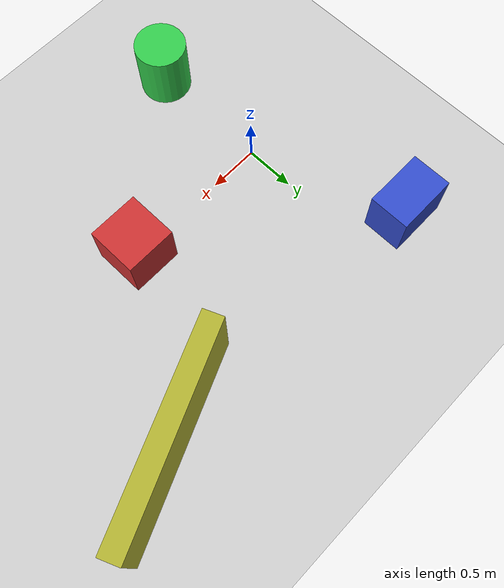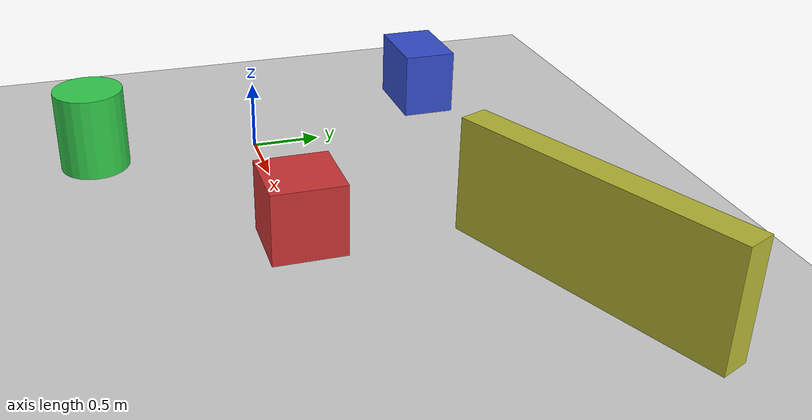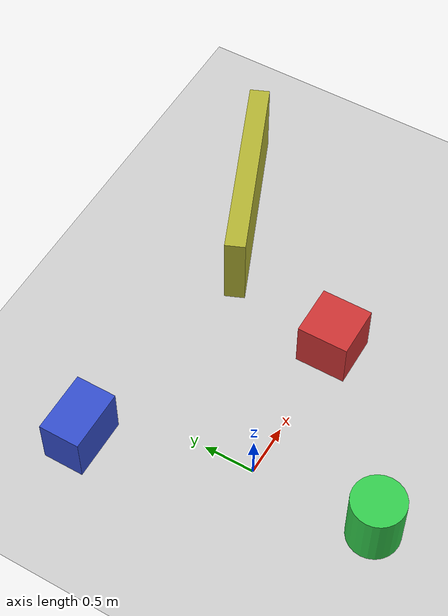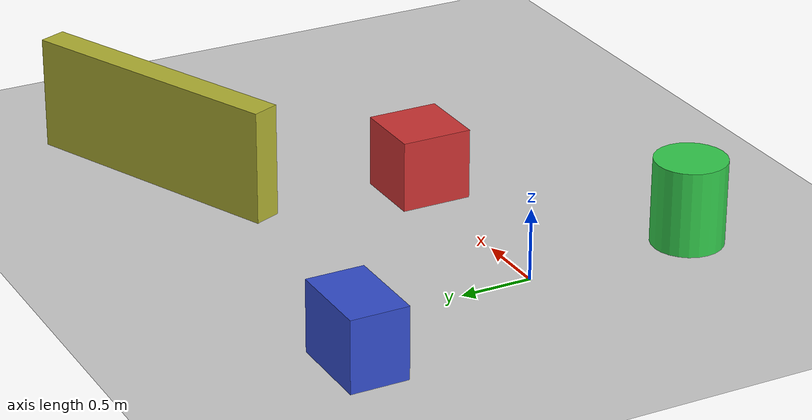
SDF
<?xml version="1.0" ?>
<sdf version="1.6">
  <world name="simple_obstacles_world">
    <gravity>0 0 -9.8</gravity>
    <ambient>0.5 0.5 0.5 1</ambient>
    <background>0.7 0.8 0.9 1</background>

    <include>
      <uri>model://ground_plane</uri>
    </include>

    <include>
      <uri>model://sun</uri>
    </include>

    <!-- Box obstacle 1 -->
    <model name="box_obstacle_1">
      <static>true</static>
      <pose>1.5 0.0 0.25 0 0 0</pose>
      <link name="link">
        <collision name="collision">
          <geometry>
            <box>
              <size>0.5 0.5 0.5</size>
            </box>
          </geometry>
        </collision>
        <visual name="visual">
          <geometry>
            <box>
              <size>0.5 0.5 0.5</size>
            </box>
          </geometry>
          <material>
            <ambient>0.8 0.2 0.2 1</ambient>
            <diffuse>0.8 0.2 0.2 1</diffuse>
          </material>
        </visual>
      </link>
    </model>

    <!-- Box obstacle 2 -->
    <model name="box_obstacle_2">
      <static>true</static>
      <pose>-0.5 1.5 0.25 0 0 0</pose>
      <link name="link">
        <collision name="collision">
          <geometry>
            <box>
              <size>0.6 0.4 0.5</size>
            </box>
          </geometry>
        </collision>
        <visual name="visual">
          <geometry>
            <box>
              <size>0.6 0.4 0.5</size>
            </box>
          </geometry>
          <material>
            <ambient>0.2 0.3 0.8 1</ambient>
            <diffuse>0.2 0.3 0.8 1</diffuse>
          </material>
        </visual>
      </link>
    </model>

    <!-- Cylinder obstacle -->
    <model name="cylinder_obstacle_1">
      <static>true</static>
      <pose>0.0 -1.2 0.3 0 0 0</pose>
      <link name="link">
        <collision name="collision">
          <geometry>
            <cylinder>
              <radius>0.25</radius>
              <length>0.6</length>
            </cylinder>
          </geometry>
        </collision>
        <visual name="visual">
          <geometry>
            <cylinder>
              <radius>0.25</radius>
              <length>0.6</length>
            </cylinder>
          </geometry>
          <material>
            <ambient>0.2 0.8 0.3 1</ambient>
            <diffuse>0.2 0.8 0.3 1</diffuse>
          </material>
        </visual>
      </link>
    </model>

    <!-- Long wall obstacle -->
    <model name="wall_obstacle_1">
      <static>true</static>
      <pose>2.5 1.5 0.4 0 0 0.4</pose>
      <link name="link">
        <collision name="collision">
          <geometry>
            <box>
              <size>2.0 0.2 0.8</size>
            </box>
          </geometry>
        </collision>
        <visual name="visual">
          <geometry>
            <box>
              <size>2.0 0.2 0.8</size>
            </box>
          </geometry>
          <material>
            <ambient>0.7 0.7 0.2 1</ambient>
            <diffuse>0.7 0.7 0.2 1</diffuse>
          </material>
        </visual>
      </link>
    </model>
  </world>
</sdf>
